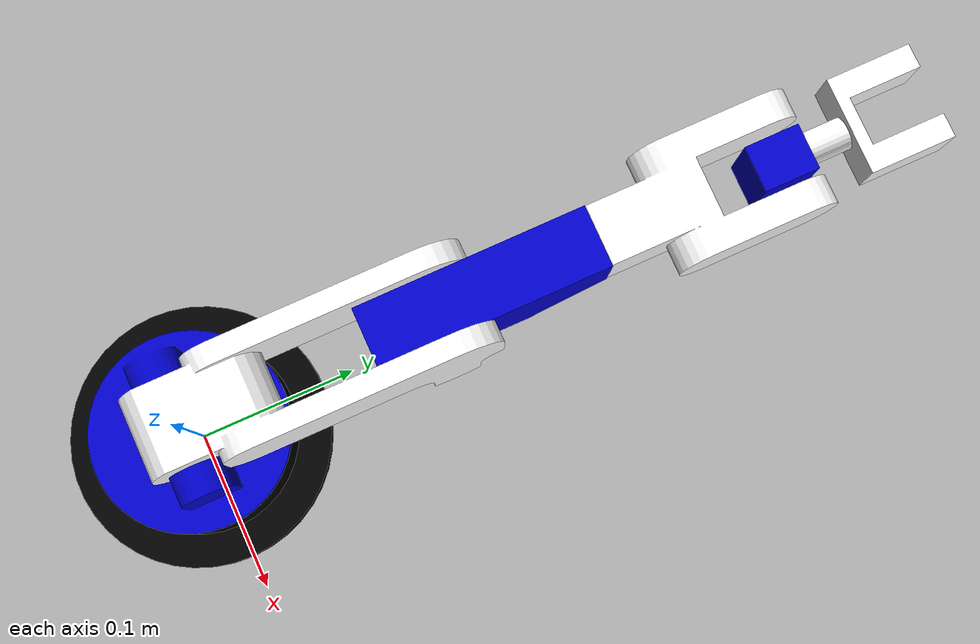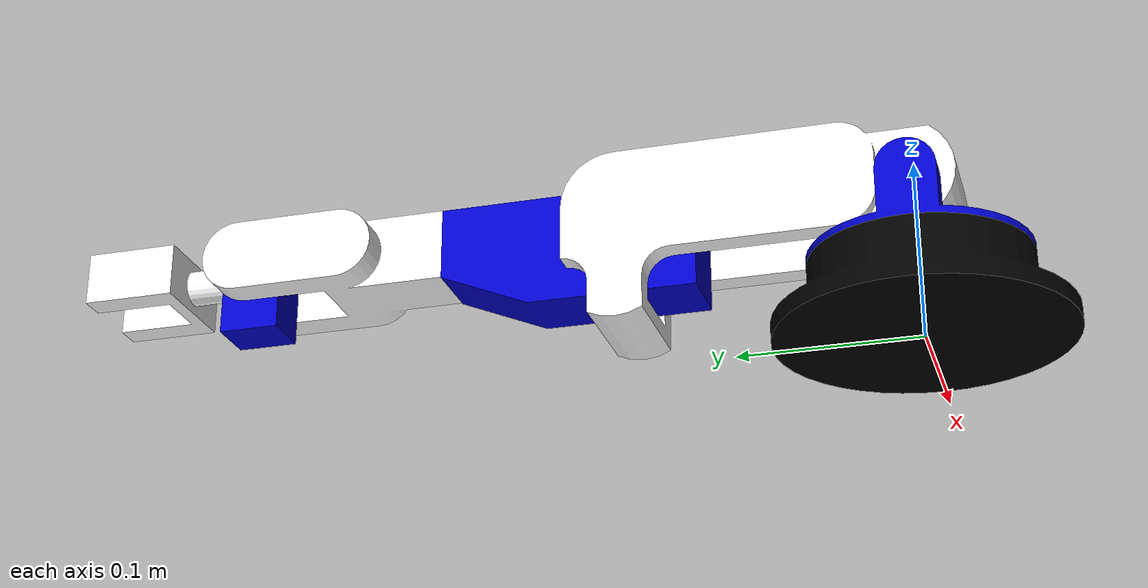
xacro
<?xml version="1.0"?>
<robot xmlns:xacro="http://www.ros.org/wiki/xacro" name="kuka_lwr">

 <xacro:property name="dir" value="/home/thomas/tutorial_ws/urdf_tutorial/urdf" />
 <xacro:property name="M_PI" value="3.1415926535897931" />
 <xacro:property name="name" value="kuka" />
  <!--
     Little helper macro to define the inertia matrix needed
     for links.
     -->
  <!-- width is along x axis
       length is along y axis
       height is along z axis
  -->
  <xacro:macro name="cuboid_inertia_def" params="width height length mass">
    <inertia ixx="${mass * (height * height + length * length) / 12}"
             iyy="${mass * (width * width + height * height) / 12}"
             izz="${mass * (width * width + length * length) / 12}"
             ixy="0" iyz="0" ixz="0"/>
  </xacro:macro>

  <!-- length is along the y-axis! -->
  <xacro:macro name="cylinder_inertia_def" params="radius length mass">
    <inertia ixx="${mass * (3 * radius * radius + length * length) / 12}"
             iyy="${mass * radius* radius / 2}"
             izz="${mass * (3 * radius * radius + length * length) / 12}"
             ixy="0" iyz="0" ixz="0"/>
  </xacro:macro>

  <xacro:property name="arm_elem_link_mass" value="2.0"/>
  <xacro:property name="arm_elem_ball_link_mass" value="2.0"/>
  <xacro:property name="arm_elem_end_link_mass" value="2.0"/>
  <xacro:property name="safety_controller_k_pos" value="100" />
  <xacro:property name="safety_controller_k_vel" value="2" />
  <xacro:property name="joint_damping" value="0.1" />

  <xacro:property name="arm_velocity_scale_factor" value="1"/>
  <xacro:property name="right" value="0" />
  <!-- right is either 1 (for right arm) or -1 (for left arm) -->

  <material name="blue">
    <color rgba="0 0 0.8 1"/>
  </material>
  <material name="black">
    <color rgba="0 0 0 1"/>
  </material>
  <material name="white">
    <color rgba="1 1 1 1"/>
  </material>

  <link name="base_link">
    <visual>
      <origin rpy="0 0 0" xyz="-0.08 -0.08 0"/>
      <geometry>
        <mesh filename="file://${dir}/meshes_fred/base.stl" scale="0.001 0.001 0.001"/>
      </geometry>
      <material name="black"/>
    </visual>
  </link>

  <link name="base_plate">
    <visual>
      <origin rpy="0 0 0" xyz="-0.06 -0.06 0"/>
      <geometry>
        <mesh filename="file://${dir}/meshes_fred/base_plate.stl" scale="0.001 0.001 0.001"/>
      </geometry>
      <material name="blue"/>
    </visual>
  </link>
  <joint name="base_to_base_plate" type="continuous">
    <parent link="base_link"/>
    <child link="base_plate"/>
    <origin xyz="0 0 0.0425"/>
    <axis xyz="0 0 1"/>
  </joint>

  <link name="arm_lower">
    <visual>
      <origin rpy="0 1.57 0" xyz="-0.032 -0.0243 0.036"/>
      <geometry>
        <mesh filename="file://${dir}/meshes_fred/arm_lower.stl" scale="0.001 0.001 0.001"/>
      </geometry>
      <material name="white"/>
    </visual>
  </link>
  <joint name="base_plate_to_arm_lower" type="continuous">
    <parent link="base_plate"/>
    <child link="arm_lower"/>
    <origin xyz="0 0 0.036"/>
    <axis xyz="1 0 0"/>
  </joint>

  <link name="arm_upper">
    <visual>
      <origin rpy="0 ${M_PI} 0" xyz="0.019 -0.0415 0.02"/>
      <geometry>
        <mesh filename="file://${dir}/meshes_fred/arm_upper.stl" scale="0.001 0.001 0.001"/>
      </geometry>195
      <material name="blue"/>
    </visual>
  </link>
  <joint name="arm_lower_to_arm_upper" type="continuous">
    <parent link="arm_lower"/>
    <child link="arm_upper"/>
    <origin xyz="0 0.158 0"/>
    <axis xyz="1 0 0"/>
  </joint>

  <link name="wrist">
    <visual>
      <origin rpy="0 0 0" xyz="-0.036625 0 -0.02"/>
      <geometry>
        <mesh filename="file://${dir}/meshes_fred/wrist.stl" scale="0.001 0.001 0.001"/>
      </geometry>
      <material name="white"/>
    </visual>
  </link>
  <joint name="arm_upper_to_wrist" type="continuous">
    <parent link="arm_upper"/>
    <child link="wrist"/>
    <origin xyz="0 0.102 0"/>
    <axis xyz="0 1 0"/>
  </joint>

  <link name="wrist_servo">
    <visual>
      <origin rpy="0 0 ${M_PI/2}" xyz="0.0145 -0.017 -0.03525"/>
      <geometry>
        <mesh filename="file://${dir}/meshes_fred/servo.stl" scale="0.001 0.001 0.001"/>
      </geometry>
      <material name="blue"/>
    </visual>
  </link>
  <joint name="wrist_to_wrist_servo" type="continuous">
    <parent link="wrist"/>
    <child link="wrist_servo"/>
    <origin xyz="0 0.11625 0"/>
    <axis xyz="1 0 0"/>
  </joint>

  <link name="gripper">
    <visual>
      <origin rpy="${-M_PI/2} 0 0" xyz="-0.03 0 0.015"/>
      <geometry>
        <mesh filename="file://${dir}/meshes_fred/gripper.stl" scale="0.001 0.001 0.001"/>
      </geometry>
      <material name="white"/>
    </visual>
  </link>
  <joint name="wrist_servo_to_gripper" type="continuous">
    <parent link="wrist_servo"/>
    <child link="gripper"/>
    <origin xyz="0 0.017 0"/>
    <axis xyz="0 1 0"/>
  </joint>

</robot>
